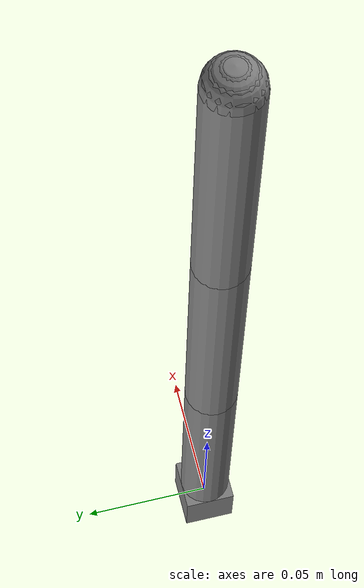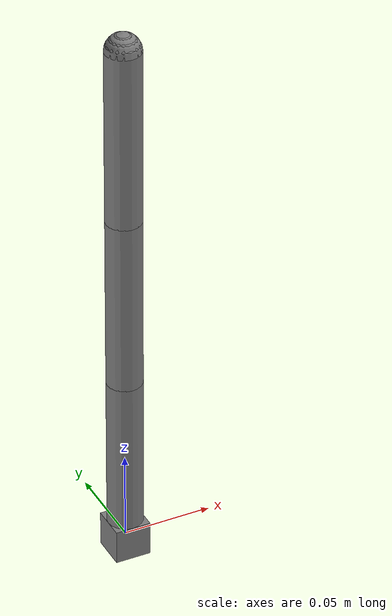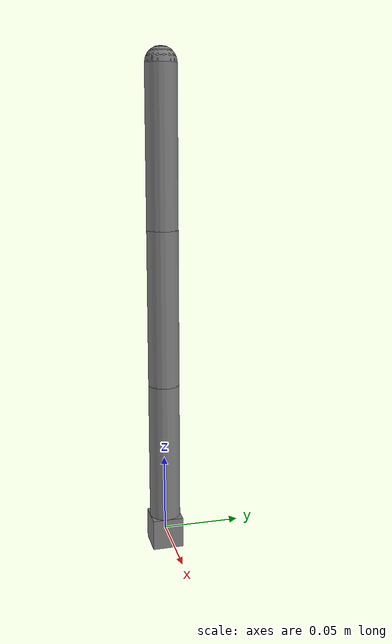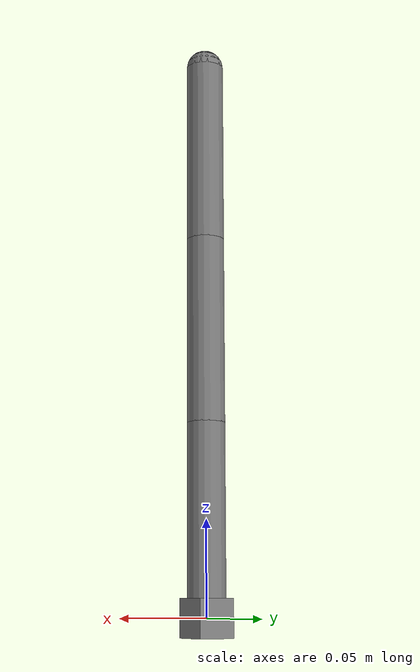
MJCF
<mujoco model="reacher2">
    <compiler inertiafromgeom="true" angle="radian" coordinate="local" />
    <option timestep="0.01" gravity="0 0 0" iterations="20" integrator="RK4" />

    <default>
        <joint armature='0.04' damping="1.0" limited="false"/>
        <geom contype="2" conaffinity="1" condim="1" friction=".5 .1 .1" density="1000" margin="0.002" />
    </default>

    <worldbody>
        <body name="link1" pos="0 0 0">
            <geom name="link1" type="capsule" fromto="0 0 0 0 0 0.1" size="0.01" />
            <joint name="joint1" type="hinge" pos="0 0 0" axis="0 0 1" />

            <body name="link2" pos="0 0 0.1">
                <geom name="link2" type="capsule" fromto="0 0 0 0 0 0.1" size="0.01" />
                <joint name="joint2" type="hinge" pos="0 0 0" axis="0 1 0" limited="true" range="-3 3"/>

                <body name="link3" pos="0 0 0.1">
                    <site name="end_effector" pos="0 0 0.1" size="0.01" />

                    <geom name="link3" type="capsule" fromto="0 0 0 0 0 0.1" size="0.01" />
                    <joint name="joint3" type="hinge" pos="0 0 0" axis="0 1 0" limited="true" range="-3 3"/>
                </body>
            </body>
        </body>

        <body name="target" pos="0 0 0">
            <geom name="target" type="box" size="0.01 0.01 0.01" />
        </body>
    </worldbody>

    <actuator>
        <motor joint="joint1" ctrllimited="true" ctrlrange="-100 100"/>
        <motor joint="joint2" ctrllimited="true" ctrlrange="-100 100"/>
        <motor joint="joint3" ctrllimited="true" ctrlrange="-100 100"/>
    </actuator>
</mujoco>
